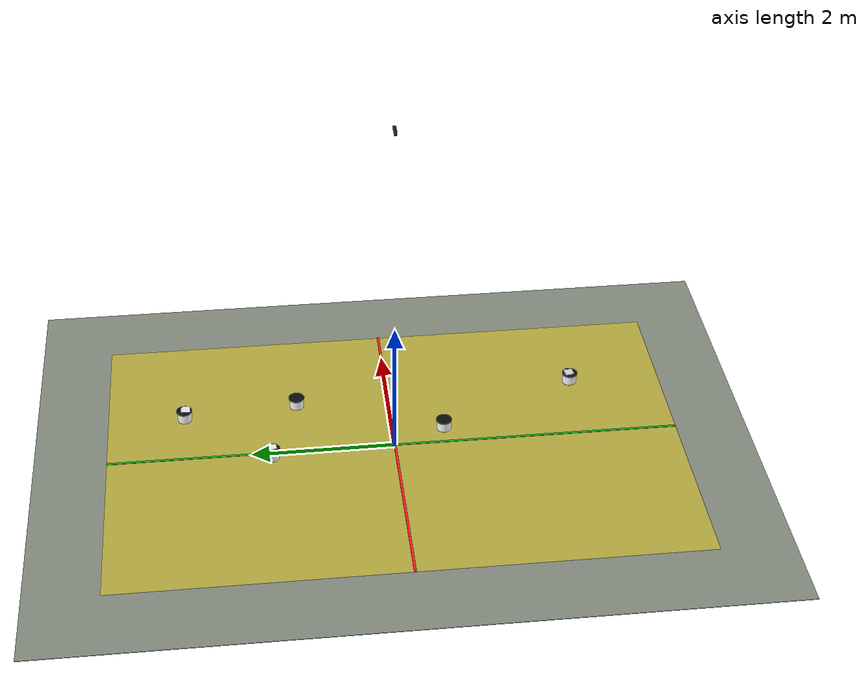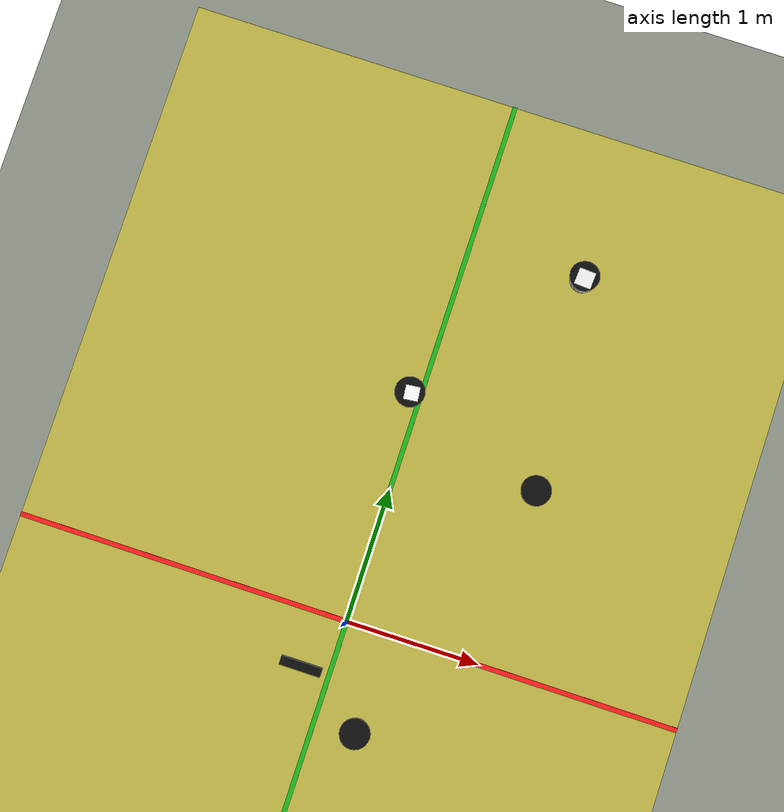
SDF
<sdf version="1.9">
 <world name="hazard_recognition_single">
  <physics name="1ms" type="ignore">
   <max_step_size>0.001</max_step_size>
   <real_time_factor>1.0</real_time_factor>
  </physics>
  <plugin filename="gz-sim-physics-system" name="gz::sim::systems::Physics"/>
  <plugin filename="gz-sim-sensors-system" name="gz::sim::systems::Sensors">
   <render_engine>ogre2</render_engine>
  </plugin>
  <plugin filename="gz-sim-user-commands-system" name="gz::sim::systems::UserCommands"/>
  <plugin filename="gz-sim-scene-broadcaster-system" name="gz::sim::systems::SceneBroadcaster"/>
  <plugin filename="gz-sim-imu-system" name="gz::sim::systems::Imu"/>
  <plugin filename="gz-sim-navsat-system" name="gz::sim::systems::NavSat"/>
  <spherical_coordinates>
   <latitude_deg>-35.363262</latitude_deg>
   <longitude_deg>149.165237</longitude_deg>
   <elevation>584.0</elevation>
   <heading_deg>0.0</heading_deg>
   <surface_model>EARTH_WGS84</surface_model>
  </spherical_coordinates>
  <scene><ambient>0.746 0.746 0.746</ambient><background>0.78 0.80 0.82</background></scene>
  <light type="directional" name="sun">
   <pose>0 0 20 0 0 0</pose>
   <diffuse>0.815 0.815 0.815 1</diffuse>
   <specular>0.6 0.6 0.6 1</specular>
   <direction>-0.531 -0.182 -0.9</direction>
  </light>
  <include><name>recognition_field</name><uri>model://recognition_field</uri></include>
  <include>
   <name>static_d435i_camera</name>
   <uri>model://static_d435i_camera</uri>
   <pose>0.0 0.0 5.0 0 0 0.0</pose>
  </include>
  <include><name>recon_1</name><uri>model://recon_bucket</uri><pose>0.87 2.918 0.0 0 0 0.0</pose></include>
  <include><name>recon_2</name><uri>model://recon_bucket</uri><pose>-0.08 1.715 0.0 0 0 0.0</pose></include>
  <include><name>recon_3</name><uri>model://recon_bucket</uri><pose>1.169 -2.688 0.0 0 0 0.0</pose></include>
  <include><name>recon_4</name><uri>model://recon_bucket</uri><pose>1.007 1.317 0.0 0 0 0.0</pose></include>
  <include><name>recon_5</name><uri>model://recon_bucket</uri><pose>0.307 -0.727 0.0 0 0 0.0</pose></include>
  <model name="marker_explosive_recon_3">
   <static>true</static>
   <pose>1.1606 -2.673 0.180 0 0 0.129979</pose>
   <link name="link">
    <visual name="marker">
     <geometry><box><size>0.1269 0.1269 0.004</size></box></geometry>
     <material>
      <diffuse>0.856 0.856 0.856 1</diffuse>
      <pbr>
       <metal>
        <albedo_map>model://hazard_marker/materials/textures/explosive.png</albedo_map>
        <roughness>0.65</roughness>
        <metalness>0</metalness>
       </metal>
      </pbr>
     </material>
    </visual>
   </link>
  </model>
  <model name="marker_corrosive_recon_1">
   <static>true</static>
   <pose>0.8756 2.8986 0.180 0 0 -0.063655</pose>
   <link name="link">
    <visual name="marker">
     <geometry><box><size>0.1258 0.1258 0.004</size></box></geometry>
     <material>
      <diffuse>0.942 0.942 0.942 1</diffuse>
      <pbr>
       <metal>
        <albedo_map>model://hazard_marker/materials/textures/corrosive.png</albedo_map>
        <roughness>0.65</roughness>
        <metalness>0</metalness>
       </metal>
      </pbr>
     </material>
    </visual>
   </link>
  </model>
  <model name="marker_nonflammable_gas_recon_2">
   <static>true</static>
   <pose>-0.0626 1.7081 0.180 0 0 0.10126</pose>
   <link name="link">
    <visual name="marker">
     <geometry><box><size>0.1074 0.1074 0.004</size></box></geometry>
     <material>
      <diffuse>0.986 0.986 0.986 1</diffuse>
      <pbr>
       <metal>
        <albedo_map>model://hazard_marker/materials/textures/nonflammable_gas.png</albedo_map>
        <roughness>0.65</roughness>
        <metalness>0</metalness>
       </metal>
      </pbr>
     </material>
    </visual>
   </link>
  </model>
 </world>
</sdf>

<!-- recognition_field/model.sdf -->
<sdf version="1.9">
  <model name="recognition_field">
    <static>true</static>
    <link name="link">
      <visual name="ground">
        <pose>0 0 -0.006 0 0 0</pose>
        <geometry><box><size>7 10 0.01</size></box></geometry>
        <material><ambient>0.54 0.57 0.52 1</ambient><diffuse>0.54 0.57 0.52 1</diffuse></material>
      </visual>
      <visual name="recognition_area">
        <pose>0 0 0.002 0 0 0</pose>
        <geometry><box><size>5 8 0.004</size></box></geometry>
        <material><ambient>0.95 0.85 0.10 0.55</ambient><diffuse>0.95 0.85 0.10 0.55</diffuse></material>
      </visual>
      <visual name="x_axis">
        <pose>0 0 0.012 0 0 0</pose>
        <geometry><box><size>5 0.035 0.006</size></box></geometry>
        <material><ambient>1 0.1 0.1 1</ambient><diffuse>1 0.1 0.1 1</diffuse></material>
      </visual>
      <visual name="y_axis">
        <pose>0 0 0.014 0 0 0</pose>
        <geometry><box><size>0.035 8 0.006</size></box></geometry>
        <material><ambient>0.1 0.7 0.1 1</ambient><diffuse>0.1 0.7 0.1 1</diffuse></material>
      </visual>
    </link>
  </model>
</sdf>

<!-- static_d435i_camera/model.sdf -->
<sdf version="1.9">
  <model name="static_d435i_camera">
    <static>true</static>
    <link name="camera_link">
      <visual name="body">
        <geometry><box><size>0.18 0.04 0.04</size></box></geometry>
        <material><ambient>0.05 0.05 0.05 1</ambient><diffuse>0.05 0.05 0.05 1</diffuse></material>
      </visual>
      <sensor name="hazard_d435i_rgbd" type="rgbd_camera">
        <pose>0 0 0 0 1.57079632679 0</pose>
        <always_on>1</always_on>
        <update_rate>30</update_rate>
        <topic>/hazard_d435i</topic>
        <camera>
          <horizontal_fov>1.5</horizontal_fov>
          <image>
            <width>1536</width>
            <height>1536</height>
            <format>R8G8B8</format>
          </image>
          <clip>
            <near>0.05</near>
            <far>20.0</far>
          </clip>
        </camera>
      </sensor>
    </link>
  </model>
</sdf>

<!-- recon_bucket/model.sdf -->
<sdf version="1.9">
  <model name="recon_bucket">
    <static>true</static>
    <link name="link">
      <visual name="body">
        <pose>0 0 0.075 0 0 0</pose>
        <geometry><cylinder><radius>0.10</radius><length>0.15</length></cylinder></geometry>
        <material><ambient>1 1 1 1</ambient><diffuse>1 1 1 1</diffuse></material>
      </visual>
      <visual name="rim">
        <pose>0 0 0.155 0 0 0</pose>
        <geometry><cylinder><radius>0.112</radius><length>0.01</length></cylinder></geometry>
        <material><ambient>0.05 0.05 0.05 1</ambient><diffuse>0.05 0.05 0.05 1</diffuse></material>
      </visual>
      <collision name="collision">
        <pose>0 0 0.075 0 0 0</pose>
        <geometry><cylinder><radius>0.10</radius><length>0.15</length></cylinder></geometry>
      </collision>
    </link>
  </model>
</sdf>
